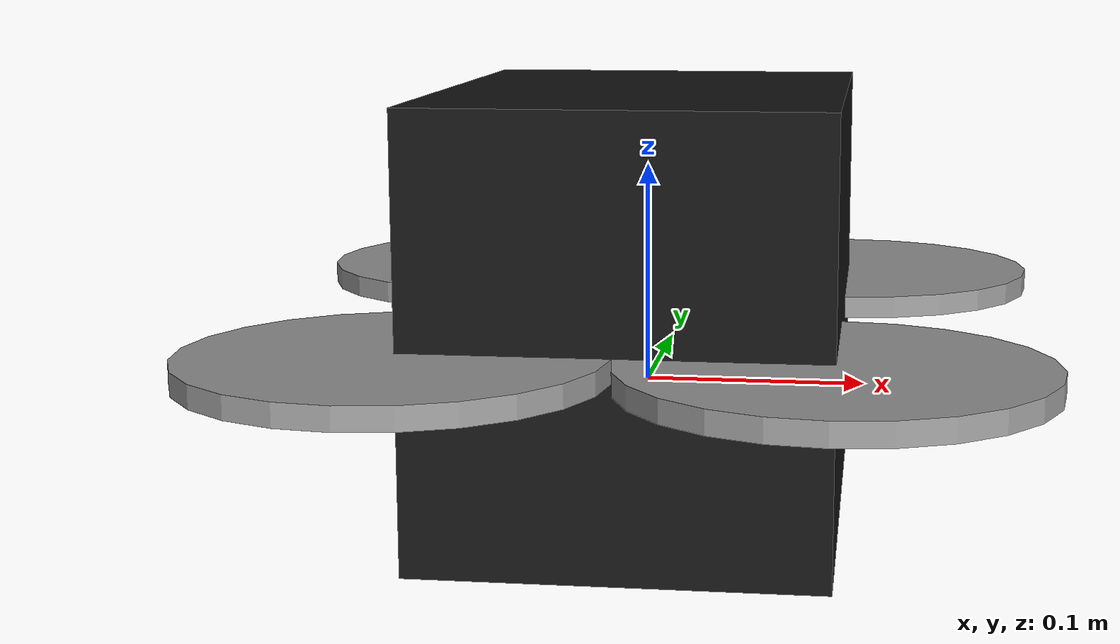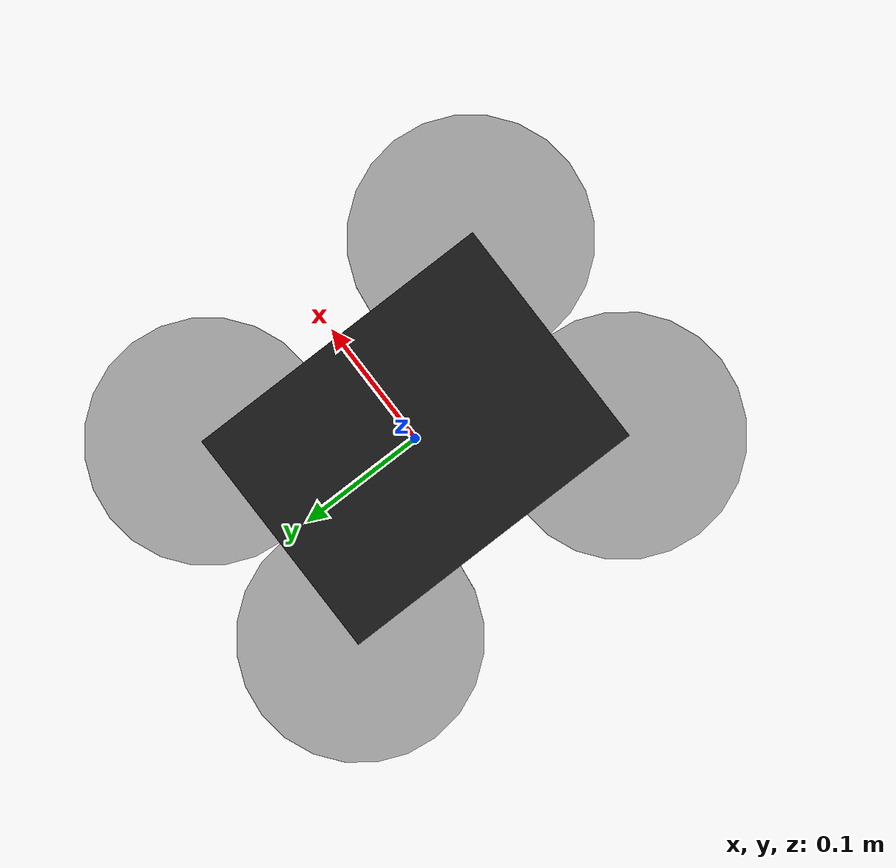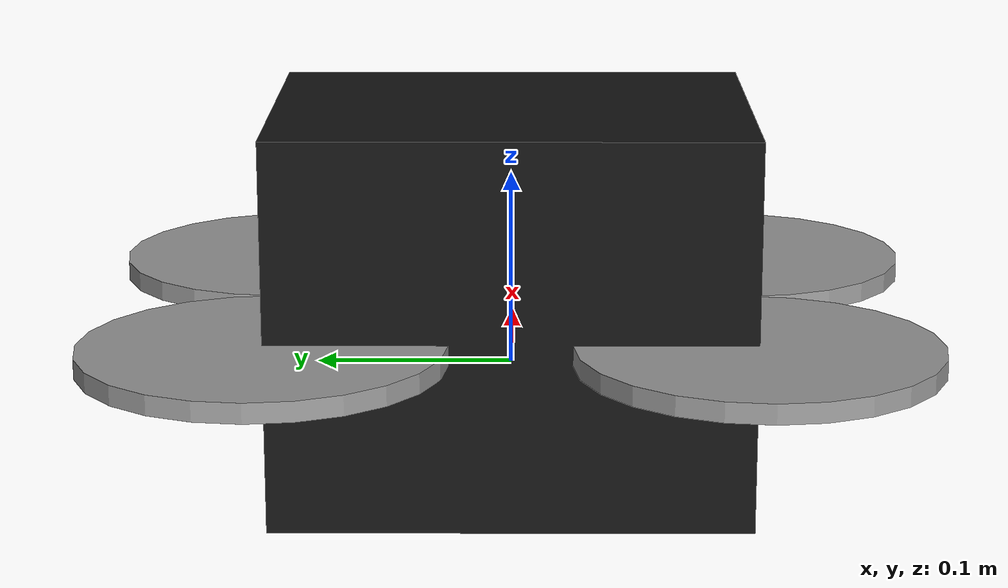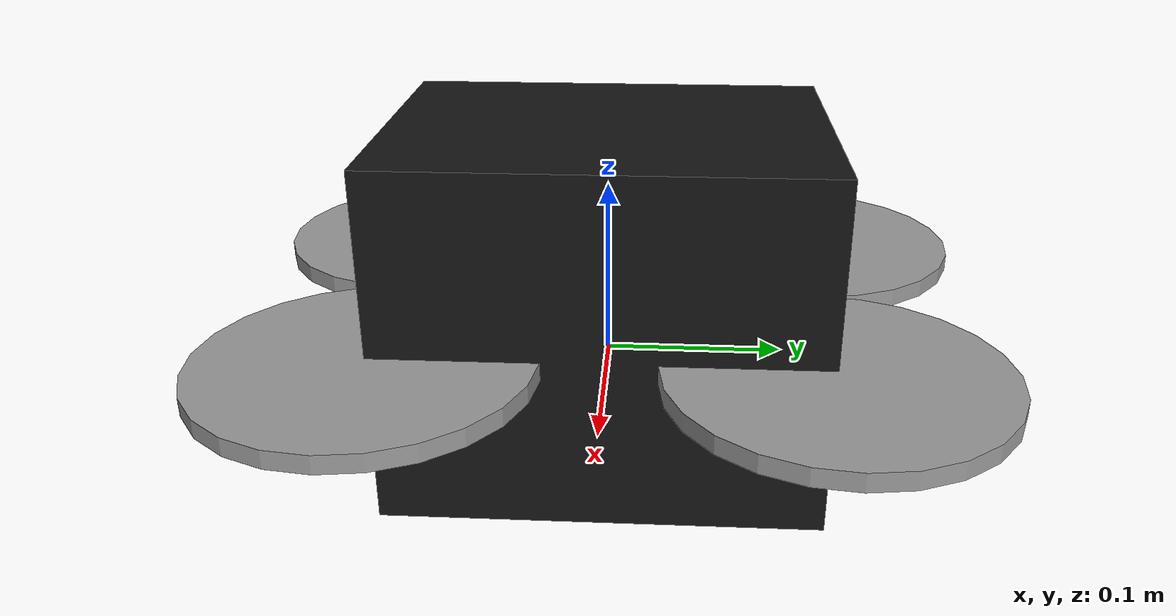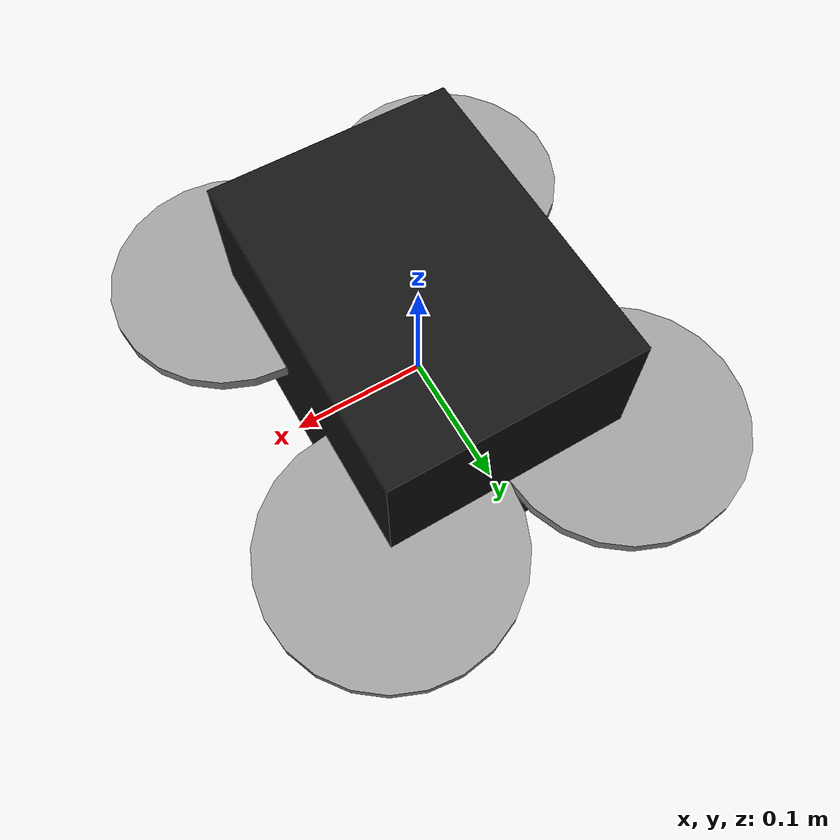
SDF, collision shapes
<?xml version="1.0"?>
<sdf version="1.6">
  <model name="coro_crystal_sensor_config_1">
    <pose>0 0 0 0 0 0</pose>
    <link name="base_link">
      <pose frame="">0 0 0 0 -0 0</pose>
      <inertial>
        <pose frame="">0 0 0.037 0 -0 0</pose>
        <mass>1.5</mass>
        <inertia>
          <ixx>0.0120</ixx>
          <iyy>0.0089</iyy>
          <izz>0.0113</izz>
        </inertia>
      </inertial>
      <collision name="base_link_inertia_collision">
        <pose frame="">0 0 0.037 0 -0 0</pose>
        <geometry>
          <box>
            <size>0.18 0.24 0.196</size>
          </box>
        </geometry>
      </collision>

      <visual name="body_visual">
        <pose>0.0 0.0 0.014 0 0 0</pose>
        <geometry>
	  <box>
	    <size>0.15 0.03 0.04</size>
	  </box>
        </geometry>
        <material>
	  <ambient>0.08 0.08 0.08 1</ambient>
	  <diffuse>0.08 0.08 0.08 1</diffuse>
        </material>
      </visual>

      <visual name="jetson_nano_visual">
        <pose>-0.02 0.0 -0.016 0 0 0</pose>
        <geometry>
	  <box>
	    <size>0.1 0.1 0.02</size>
	  </box>
        </geometry>
        <material>
	  <ambient>0.01 0.01 0.01 1</ambient>
	  <diffuse>0.01 0.01 0.01 1</diffuse>
        </material>
      </visual>
      <visual name="battery_visual">
        <pose>0.0 0.0 0.06 0 0 0</pose>
        <geometry>
	  <box>
	    <size>0.15 0.03 0.05</size>
	  </box>
        </geometry>
        <material>
	  <ambient>0.01 0.01 0.8 1</ambient>
	  <diffuse>0.01 0.01 0.8 1</diffuse>
        </material>
      </visual>

      <visual name="antenna1_visual">
        <pose>0.03 -0.02 0.085 0 0 0</pose>
        <geometry>
	  <cylinder>
            <length>0.1</length>
            <radius>0.005</radius>
	  </cylinder>
        </geometry>
      </visual>
      <visual name="antenna2_visual">
        <pose>-0.06 -0.02 0.085 0 0 0</pose>
        <geometry>
	  <cylinder>
            <length>0.1</length>
            <radius>0.005</radius>
	  </cylinder>
        </geometry>
        <material>
	  <ambient>0.06 0.06 0.06 1</ambient>
	  <diffuse>0.06 0.06 0.06 1</diffuse>
        </material>
      </visual>

      <visual name="landing_gear1_visual">
        <pose>0.09 0.12 -0.033 0 0 0</pose>
        <geometry>
	  <cylinder>
            <length>0.055</length>
            <radius>0.004</radius>
	  </cylinder>
        </geometry>
        <material>
	  <ambient>0.06 0.06 0.06 1</ambient>
	  <diffuse>0.06 0.06 0.06 1</diffuse>
        </material>
      </visual>
      <visual name="landing_gear2_visual">
        <pose>0.09 -0.12 -0.033 0 0 0</pose>
        <geometry>
	  <cylinder>
            <length>0.055</length>
            <radius>0.004</radius>
	  </cylinder>
        </geometry>
        <material>
	  <ambient>0.06 0.06 0.06 1</ambient>
	  <diffuse>0.06 0.06 0.06 1</diffuse>
        </material>
      </visual>
      <visual name="landing_gear3_visual">
        <pose>-0.09 0.12 -0.033 0 0 0</pose>
        <geometry>
	  <cylinder>
            <length>0.055</length>
            <radius>0.004</radius>
	  </cylinder>
        </geometry>
        <material>
	  <ambient>0.06 0.06 0.06 1</ambient>
	  <diffuse>0.06 0.06 0.06 1</diffuse>
        </material>
      </visual>
      <visual name="landing_gear4_visual">
        <pose>-0.09 -0.12 -0.033 0 0 0</pose>
        <geometry>
	  <cylinder>
            <length>0.055</length>
            <radius>0.004</radius>
	  </cylinder>
        </geometry>
        <material>
	  <ambient>0.06 0.06 0.06 1</ambient>
	  <diffuse>0.06 0.06 0.06 1</diffuse>
        </material>
      </visual>

      <visual name="arm1_visual">
        <pose>0.057 0.067 -0.003 0 0 1</pose>
        <geometry>
	  <box>
	    <size>0.15 0.015 0.006</size>
	  </box>
        </geometry>
        <material>
	  <ambient>0.06 0.06 0.06 1</ambient>
	  <diffuse>0.06 0.06 0.06 1</diffuse>
        </material>
      </visual>
      <visual name="arm2_visual">
        <pose>0.057 -0.067 -0.003 0 0 -1</pose>
        <geometry>
	  <box>
	    <size>0.15 0.015 0.006</size>
	  </box>
        </geometry>
        <material>
	  <ambient>0.06 0.06 0.06 1</ambient>
	  <diffuse>0.06 0.06 0.06 1</diffuse>
        </material>
      </visual>
      <visual name="arm3_visual">
        <pose>-0.057 0.067 -0.003 0 0 -1</pose>
        <geometry>
	  <box>
	    <size>0.15 0.015 0.006</size>
	  </box>
        </geometry>
        <material>
	  <ambient>0.06 0.06 0.06 1</ambient>
	  <diffuse>0.06 0.06 0.06 1</diffuse>
        </material>
      </visual>
      <visual name="arm4_visual">
        <pose>-0.057 -0.067 -0.003 0 0 1</pose>
        <geometry>
	  <box>
	    <size>0.15 0.015 0.006</size>
	  </box>
        </geometry>
        <material>
	  <ambient>0.06 0.06 0.06 1</ambient>
	  <diffuse>0.06 0.06 0.06 1</diffuse>
        </material>
      </visual>

      <visual name="motor1_visual">
        <pose>0.09 0.12 0.01 0 0 0</pose>
        <geometry>
	  <cylinder>
            <length>0.02</length>
            <radius>0.015</radius>
	  </cylinder>
        </geometry>
        <material>
	  <ambient>0.08 0.08 0.08 1</ambient>
	  <diffuse>0.08 0.08 0.08 1</diffuse>
        </material>
      </visual>
      <visual name="motor2_visual">
        <pose>-0.09 0.12 0.01 0 0 0</pose>
        <geometry>
	  <cylinder>
            <length>0.02</length>
            <radius>0.015</radius>
	  </cylinder>
        </geometry>
        <material>
	  <ambient>0.08 0.08 0.08 1</ambient>
	  <diffuse>0.08 0.08 0.08 1</diffuse>
        </material>
      </visual>
      <visual name="motor3_visual">
        <pose>0.09 -0.12 0.01 0 0 0</pose>
        <geometry>
	  <cylinder>
            <length>0.02</length>
            <radius>0.015</radius>
	  </cylinder>
        </geometry>
        <material>
	  <ambient>0.08 0.08 0.08 1</ambient>
	  <diffuse>0.08 0.08 0.08 1</diffuse>
        </material>
      </visual>
      <visual name="motor4_visual">
        <pose>-0.09 -0.12 0.01 0 0 0</pose>
        <geometry>
	  <cylinder>
            <length>0.02</length>
            <radius>0.015</radius>
	  </cylinder>
        </geometry>
        <material>
	  <ambient>0.08 0.08 0.08 1</ambient>
	  <diffuse>0.08 0.08 0.08 1</diffuse>
        </material>
      </visual>

      <visual name="lightbar_visual">
        <pose>0.076 0.0 0.065 0 0 0</pose>
        <geometry>
	  <box>
	    <size>0.001 0.02 0.04</size>
	  </box>
        </geometry>
        <material>
	  <ambient>0.8 0.8 0.8 1</ambient>
	  <diffuse>0.8 0.8 0.8 1</diffuse>
        </material>
      </visual>

      <light name="light_source1" type="spot">
        <pose frame="">0.09 0.01 0.065 -0.01 -1.570796327 0.75</pose>
        <attenuation>
          <range>15</range>
          <linear>0</linear>
          <constant>0.1</constant>
          <quadratic>0.01</quadratic>
        </attenuation>
        <diffuse>0.8 0.8 0.5 1</diffuse>
        <specular>0.8 0.8 0.5 1</specular>
        <spot>
          <inner_angle>1.5</inner_angle>
          <outer_angle>2.5</outer_angle>
          <falloff>1</falloff>
        </spot>
        <direction>0 0 -1</direction>
        <cast_shadows>1</cast_shadows>
      </light>
      <light name="light_source2" type="spot">
        <pose frame="">0.09 -0.01 0.065 -0.01 -1.570796327 -0.750</pose>
        <attenuation>
          <range>15</range>
          <linear>0</linear>
          <constant>0.1</constant>
          <quadratic>0.01</quadratic>
        </attenuation>
        <diffuse>0.8 0.8 0.5 1</diffuse>
        <specular>0.8 0.8 0.5 1</specular>
        <spot>
          <inner_angle>1.5</inner_angle>
          <outer_angle>2.5</outer_angle>
          <falloff>1</falloff>
        </spot>
        <direction>0 0 -1</direction>
        <cast_shadows>1</cast_shadows>
      </light>

      <sensor name="imu_sensor" type="imu">
        <always_on>1</always_on>
        <update_rate>250</update_rate>
        <imu>
          <enable_orientation>0</enable_orientation>
          <angular_velocity>
            <x>
              <noise type="gaussian">
                <mean>0</mean>
                <stddev>0.009</stddev>
                <bias_mean>0.00075</bias_mean>
                <bias_stddev>0.005</bias_stddev>
                <dynamic_bias_stddev>0.00002</dynamic_bias_stddev>
                <dynamic_bias_correlation_time>400.0</dynamic_bias_correlation_time>
                <precision>0.00025</precision>
              </noise>
            </x>
            <y>
              <noise type="gaussian">
                <mean>0</mean>
                <stddev>0.009</stddev>
                <bias_mean>0.00075</bias_mean>
                <bias_stddev>0.005</bias_stddev>
                <dynamic_bias_stddev>0.00002</dynamic_bias_stddev>
                <dynamic_bias_correlation_time>400.0</dynamic_bias_correlation_time>
                <precision>0.00025</precision>
              </noise>
            </y>
            <z>
              <noise type="gaussian">
                <mean>0</mean>
                <stddev>0.009</stddev>
                <bias_mean>0.00075</bias_mean>
                <bias_stddev>0.005</bias_stddev>
                <dynamic_bias_stddev>0.00002</dynamic_bias_stddev>
                <dynamic_bias_correlation_time>400.0</dynamic_bias_correlation_time>
                <precision>0.00025</precision>
              </noise>
            </z>
          </angular_velocity>
          <linear_acceleration>
            <x>
              <noise type="gaussian">
                <mean>0</mean>
                <stddev>0.021</stddev>
                <bias_mean>0.05</bias_mean>
                <bias_stddev>0.0075</bias_stddev>
                <dynamic_bias_stddev>0.000375</dynamic_bias_stddev>
                <dynamic_bias_correlation_time>175.0</dynamic_bias_correlation_time>
                <precision>0.005</precision>
              </noise>
            </x>
            <y>
              <noise type="gaussian">
                <mean>0</mean>
                <stddev>0.021</stddev>
                <bias_mean>0.05</bias_mean>
                <bias_stddev>0.0075</bias_stddev>
                <dynamic_bias_stddev>0.000375</dynamic_bias_stddev>
                <dynamic_bias_correlation_time>175.0</dynamic_bias_correlation_time>
                <precision>0.005</precision>
              </noise>
            </y>
            <z>
              <noise type="gaussian">
                <mean>0</mean>
                <stddev>0.021</stddev>
                <bias_mean>0.05</bias_mean>
                <bias_stddev>0.0075</bias_stddev>
                <dynamic_bias_stddev>0.000375</dynamic_bias_stddev>
                <dynamic_bias_correlation_time>175.0</dynamic_bias_correlation_time>
                <precision>0.005</precision>
              </noise>
            </z>
          </linear_acceleration>
        </imu>
      </sensor>
      <sensor name="air_pressure" type="air_pressure">
        <always_on>1</always_on>
        <update_rate>20</update_rate>
        <air_pressure>
          <reference_altitude>0</reference_altitude>
          <noise type="gaussian">
            <mean>0.00000008</mean>
          </noise>
        </air_pressure>
      </sensor>
      <sensor name="magnetometer" type="magnetometer">
        <always_on>1</always_on>
        <update_rate>20</update_rate>
        <magnetometer>
          <x>
            <noise type="gaussian">
              <mean>0.000000080</mean>
              <bias_mean>0.000000400</bias_mean>
            </noise>
          </x>
          <y>
            <noise type="gaussian">
              <mean>0.000000080</mean>
              <bias_mean>0.000000400</bias_mean>
            </noise>
          </y>
          <z>
            <noise type="gaussian">
              <mean>0.000000080</mean>
              <bias_mean>0.000000400</bias_mean>
            </noise>
          </z>
        </magnetometer>
      </sensor>

      <visual name="d435_dae_front_visual">
        <pose>0.075 0 -0.03 0 0 0</pose>
        <geometry>
	  <mesh>
	    <scale>0.001 0.001 0.001</scale>
	    <uri>meshes/realsense_d435.dae</uri>
	  </mesh>
        </geometry>
      </visual>

      <sensor name="rgbd_front" type="rgbd_camera">
        <pose>0.102 0 -0.018 0 0 0</pose>
        <always_on>1</always_on>
        <update_rate>30</update_rate>
        <camera name="rgbd_front">
          <horizontal_fov>1.50098</horizontal_fov>
          <lens>
            <intrinsics>
              <!-- fx = fy = width / ( 2 * tan (hfov / 2 ) ) -->
              <fx>343.159</fx>
              <fy>343.159</fy>
              <!-- cx = ( width - 1 ) / 2 -->
              <cx>319.5</cx>
              <!-- cy = ( height - 1 ) / 2 -->
              <cy>179.5</cy>
              <s>0</s>
            </intrinsics>
          </lens>
          <distortion>
            <k1>0.0</k1>
            <k2>0.0</k2>
            <k3>0.0</k3>
            <p1>0.0</p1>
            <p2>0.0</p2>
            <center>0.5 0.5</center>
          </distortion>
          <image>
            <width>640</width>
            <height>360</height>
            <format>R8G8B8</format>
          </image>
          <clip>
            <near>0.01</near>
            <far>300</far>
          </clip>
          <depth_camera>
            <clip>
              <near>0.1</near>
              <far>10</far>
            </clip>
          </depth_camera>
          <noise>
            <type>gaussian</type>
            <mean>0</mean>
            <stddev>0.007</stddev>
          </noise>
        </camera>
      </sensor>

      <visual name="camera_left_visual">
        <pose>0.085 -0.015 0.03 0 0 0.785398163</pose>
        <geometry>
          <box>
            <size>0.01 0.02 0.02</size>
          </box>
        </geometry>
        <material>
          <ambient>0.0 0.2 0.0 1.0</ambient>
          <diffuse>0.0 0.2 0.0 1.0</diffuse>
        </material>
      </visual>
      <visual name="camera_lens_left_visual">
        <pose>0.092 -0.008 0.03 0 1.5707963267948966 0.785398163</pose>
        <geometry>
          <cylinder>
            <length>0.011</length>
            <radius>0.005</radius>
          </cylinder>
        </geometry>
        <material>
          <ambient>0.0 0.0 0.0 1.0</ambient>
          <diffuse>0.0 0.0 0.0 1.0</diffuse>
        </material>
      </visual>

      <visual name="camera_right_visual">
        <pose>0.085 0.015 0.03 0 0 -0.785398163</pose>
        <geometry>
          <box>
            <size>0.01 0.02 0.02</size>
          </box>
        </geometry>
        <material>
          <ambient>0.0 0.2 0.0 1.0</ambient>
          <diffuse>0.0 0.2 0.0 1.0</diffuse>
        </material>
      </visual>
      <visual name="camera_lens_right_visual">
        <pose>0.092 0.008 0.03 0 1.5707963267948966 -0.785398163</pose>
        <geometry>
          <cylinder>
            <length>0.011</length>
            <radius>0.005</radius>
          </cylinder>
        </geometry>
        <material>
          <ambient>0.0 0.0 0.0 1.0</ambient>
          <diffuse>0.0 0.0 0.0 1.0</diffuse>
        </material>
      </visual>

      <!-- Physical robot has B0247 with LN008 with a 180 deg hor x 130 deg vert FOV
           Since fisheye cameras are not modeled, two cameras are used in the model -->
      <sensor name="camera_left" type="camera">
        <pose>0.098 -0.002 0.03 0 0 0.785398163</pose>
        <always_on>1</always_on>
        <update_rate>25</update_rate>
        <camera name="camera_left">
          <horizontal_fov>1.658</horizontal_fov>
          <lens>
            <intrinsics>
              <!-- fx = fy = width / ( 2 * tan (hfov / 2 ) ) -->
              <fx>329.9</fx>
              <fy>329.9</fy>
              <!-- cx = ( width - 1 ) / 2 -->
              <cx>359.5</cx>
              <!-- cy = ( height - 1 ) / 2 -->
              <cy>539.5</cy>
              <s>0</s>
            </intrinsics>
          </lens>
          <distortion>
            <k1>0.0</k1>
            <k2>0.0</k2>
            <k3>0.0</k3>
            <p1>0.0</p1>
            <p2>0.0</p2>
            <center>0.5 0.5</center>
          </distortion>
          <image>
            <width>720</width>
            <height>1080</height>
            <format>R8G8B8</format>
          </image>
          <clip>
            <near>0.01</near>
            <far>300</far>
          </clip>
          <noise>
            <type>gaussian</type>
            <mean>0</mean>
            <stddev>0.007</stddev>
          </noise>
        </camera>
      </sensor>

      <sensor name="camera_right" type="camera">
        <pose>0.098 0.002 0.03 0 0 -0.785398163</pose>
        <always_on>1</always_on>
        <update_rate>25</update_rate>
        <camera name="camera_right">
          <horizontal_fov>1.658</horizontal_fov>
          <lens>
            <intrinsics>
              <!-- fx = fy = width / ( 2 * tan (hfov / 2 ) ) -->
              <fx>329.9</fx>
              <fy>329.9</fy>
              <!-- cx = ( width - 1 ) / 2 -->
              <cx>359.5</cx>
              <!-- cy = ( height - 1 ) / 2 -->
              <cy>539.5</cy>
              <s>0</s>
            </intrinsics>
          </lens>
          <distortion>
            <k1>0.0</k1>
            <k2>0.0</k2>
            <k3>0.0</k3>
            <p1>0.0</p1>
            <p2>0.0</p2>
            <center>0.5 0.5</center>
          </distortion>
          <image>
            <width>720</width>
            <height>1080</height>
            <format>R8G8B8</format>
          </image>
          <clip>
            <near>0.01</near>
            <far>300</far>
          </clip>
          <noise>
            <type>gaussian</type>
            <mean>0</mean>
            <stddev>0.007</stddev>
          </noise>
        </camera>
      </sensor>

      <sensor name="bottom_laser" type="gpu_ray">
        <pose>-0.065 -0.08 -0.01 0 -1.57 0</pose>
        <update_rate>50</update_rate>
        <lidar>
          <scan>
            <horizontal>
              <samples>1</samples>
              <resolution>1</resolution>
              <min_angle>3.141592654</min_angle>
              <max_angle>3.141592654</max_angle>
            </horizontal>
          </scan>
          <range>
            <min>0.05</min>
            <max>40</max>
            <resolution>0.01</resolution>
          </range>
          <noise>
            <type>gaussian</type>
            <mean>0</mean>
            <stddev>0.01</stddev>
          </noise>
        </lidar>
      </sensor>
    </link>

    <link name="rotor_0">
      <pose frame="">0.09 -0.12 0.03 0 -0 0</pose>
      <inertial>
        <pose frame="">0 0 0 0 -0 0</pose>
        <mass>0.008</mass>
        <inertia>
          <ixx>1e-07</ixx>
          <ixy>0</ixy>
          <ixz>0</ixz>
          <iyy>5e-06</iyy>
          <iyz>0</iyz>
          <izz>5e-06</izz>
        </inertia>
      </inertial>
      <collision name="rotor_0_collision">
        <pose frame="">0 0 0 0 -0 0</pose>
        <geometry>
          <cylinder>
            <length>0.01</length>
            <radius>0.09</radius>
          </cylinder>
        </geometry>
        <surface>
          <contact>
            <ode/>
          </contact>
          <friction>
            <ode/>
          </friction>
        </surface>
      </collision>
      <visual name="rotor_0_visual">
        <pose frame="">0 0 0 0 -0 0</pose>
        <geometry>
          <mesh>
            <scale>0.09 0.09 0.09</scale>
            <uri>meshes/propeller_ccw.dae</uri>
          </mesh>
        </geometry>
        <material>
          <diffuse>0.5 0.5 0.5 1</diffuse>
          <script>
            <name>Gazebo/Grey</name>
            <uri>file://media/materials/scripts/gazebo.material</uri>
          </script>
        </material>
        <cast_shadows>0</cast_shadows>
      </visual>
      <gravity>1</gravity>
      <velocity_decay/>
    </link>
    <joint name="rotor_0_joint" type="revolute">
      <child>rotor_0</child>
      <parent>base_link</parent>
      <axis>
        <xyz>0 0 1</xyz>
        <limit>
          <lower>-1e+16</lower>
          <upper>1e+16</upper>
        </limit>
        <dynamics>
          <spring_reference>0</spring_reference>
          <spring_stiffness>0</spring_stiffness>
        </dynamics>
        <use_parent_model_frame>1</use_parent_model_frame>
      </axis>
    </joint>
    <link name="rotor_1">
      <pose frame="">-0.09 0.12 0.03 0 -0 0</pose>
      <inertial>
        <pose frame="">0 0 0 0 -0 0</pose>
        <mass>0.008</mass>
        <inertia>
          <ixx>1e-07</ixx>
          <ixy>0</ixy>
          <ixz>0</ixz>
          <iyy>5e-06</iyy>
          <iyz>0</iyz>
          <izz>5e-06</izz>
        </inertia>
      </inertial>
      <collision name="rotor_1_collision">
        <pose frame="">0 0 0 0 -0 0</pose>
        <geometry>
          <cylinder>
            <length>0.01</length>
            <radius>0.09</radius>
          </cylinder>
        </geometry>
        <surface>
          <contact>
            <ode/>
          </contact>
          <friction>
            <ode/>
          </friction>
        </surface>
      </collision>
      <visual name="rotor_1_visual">
        <pose frame="">0 0 0 0 -0 0</pose>
        <geometry>
          <mesh>
            <scale>0.09 0.09 0.09</scale>
            <uri>meshes/propeller_ccw.dae</uri>
          </mesh>
        </geometry>
        <material>
          <diffuse>0.5 0.5 0.5 1</diffuse>
          <script>
            <name>Gazebo/Grey</name>
            <uri>file://media/materials/scripts/gazebo.material</uri>
          </script>
        </material>
        <cast_shadows>0</cast_shadows>
      </visual>
      <gravity>1</gravity>
      <velocity_decay/>
    </link>
    <joint name="rotor_1_joint" type="revolute">
      <child>rotor_1</child>
      <parent>base_link</parent>
      <axis>
        <xyz>0 0 1</xyz>
        <limit>
          <lower>-1e+16</lower>
          <upper>1e+16</upper>
        </limit>
        <dynamics>
          <spring_reference>0</spring_reference>
          <spring_stiffness>0</spring_stiffness>
        </dynamics>
        <use_parent_model_frame>1</use_parent_model_frame>
      </axis>
    </joint>
    <link name="rotor_2">
      <pose frame="">0.09 0.12 0.03 0 -0 0</pose>
      <inertial>
        <pose frame="">0 0 0 0 -0 0</pose>
        <mass>0.008</mass>
        <inertia>
          <ixx>1e-07</ixx>
          <ixy>0</ixy>
          <ixz>0</ixz>
          <iyy>5e-06</iyy>
          <iyz>0</iyz>
          <izz>5e-06</izz>
        </inertia>
      </inertial>
      <collision name="rotor_2_collision">
        <pose frame="">0 0 0 0 -0 0</pose>
        <geometry>
          <cylinder>
            <length>0.01</length>
            <radius>0.09</radius>
          </cylinder>
        </geometry>
        <surface>
          <contact>
            <ode/>
          </contact>
          <friction>
            <ode/>
          </friction>
        </surface>
      </collision>
      <visual name="rotor_2_visual">
        <pose frame="">0 0 0 0 -0 0</pose>
        <geometry>
          <mesh>
            <scale>0.09 0.09 0.09</scale>
            <uri>meshes/propeller_cw.dae</uri>
          </mesh>
        </geometry>
        <material>
          <diffuse>0.5 0.5 0.5 1</diffuse>
          <script>
            <name>Gazebo/Grey</name>
            <uri>file://media/materials/scripts/gazebo.material</uri>
          </script>
        </material>
        <cast_shadows>0</cast_shadows>
      </visual>
      <gravity>1</gravity>
      <velocity_decay/>
    </link>
    <joint name="rotor_2_joint" type="revolute">
      <child>rotor_2</child>
      <parent>base_link</parent>
      <axis>
        <xyz>0 0 1</xyz>
        <limit>
          <lower>-1e+16</lower>
          <upper>1e+16</upper>
        </limit>
        <dynamics>
          <spring_reference>0</spring_reference>
          <spring_stiffness>0</spring_stiffness>
        </dynamics>
        <use_parent_model_frame>1</use_parent_model_frame>
      </axis>
    </joint>
    <link name="rotor_3">
      <pose frame="">-0.09 -0.12 0.03 0 -0 0</pose>
      <inertial>
        <pose frame="">0 0 0 0 -0 0</pose>
        <mass>0.008</mass>
        <inertia>
          <ixx>1e-07</ixx>
          <ixy>0</ixy>
          <ixz>0</ixz>
          <iyy>5e-06</iyy>
          <iyz>0</iyz>
          <izz>5e-06</izz>
        </inertia>
      </inertial>
      <collision name="rotor_3_collision">
        <pose frame="">0 0 0 0 -0 0</pose>
        <geometry>
          <cylinder>
            <length>0.01</length>
            <radius>0.09</radius>
          </cylinder>
        </geometry>
        <surface>
          <contact>
            <ode/>
          </contact>
          <friction>
            <ode/>
          </friction>
        </surface>
      </collision>
      <visual name="rotor_3_visual">
        <pose frame="">0 0 0 0 -0 0</pose>
        <geometry>
          <mesh>
            <scale>0.09 0.09 0.09</scale>
            <uri>meshes/propeller_cw.dae</uri>
          </mesh>
        </geometry>
        <material>
          <diffuse>0.5 0.5 0.5 1</diffuse>
          <script>
            <name>Gazebo/Grey</name>
            <uri>file://media/materials/scripts/gazebo.material</uri>
          </script>
        </material>
        <cast_shadows>0</cast_shadows>
      </visual>
      <gravity>1</gravity>
      <velocity_decay/>
    </link>
    <joint name="rotor_3_joint" type="revolute">
      <child>rotor_3</child>
      <parent>base_link</parent>
      <axis>
        <xyz>0 0 1</xyz>
        <limit>
          <lower>-1e+16</lower>
          <upper>1e+16</upper>
        </limit>
        <dynamics>
          <spring_reference>0</spring_reference>
          <spring_stiffness>0</spring_stiffness>
        </dynamics>
        <use_parent_model_frame>1</use_parent_model_frame>
      </axis>
    </joint>
  </model>
</sdf>
